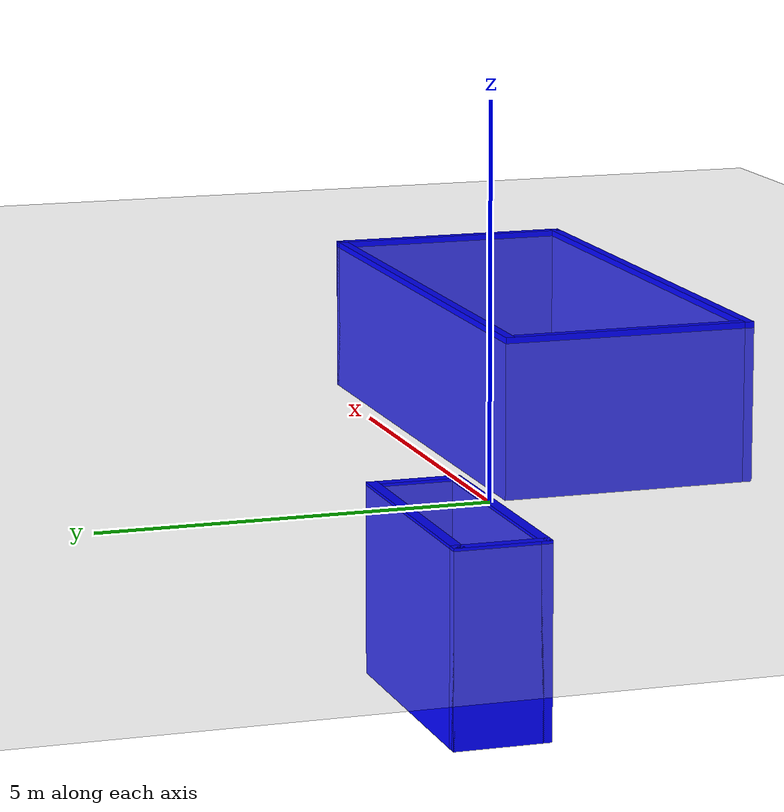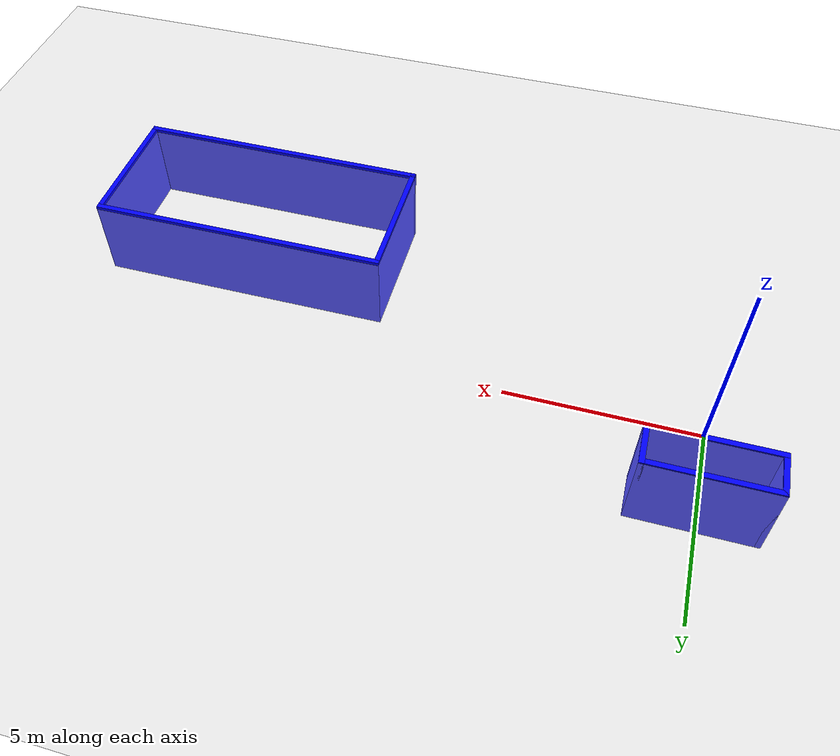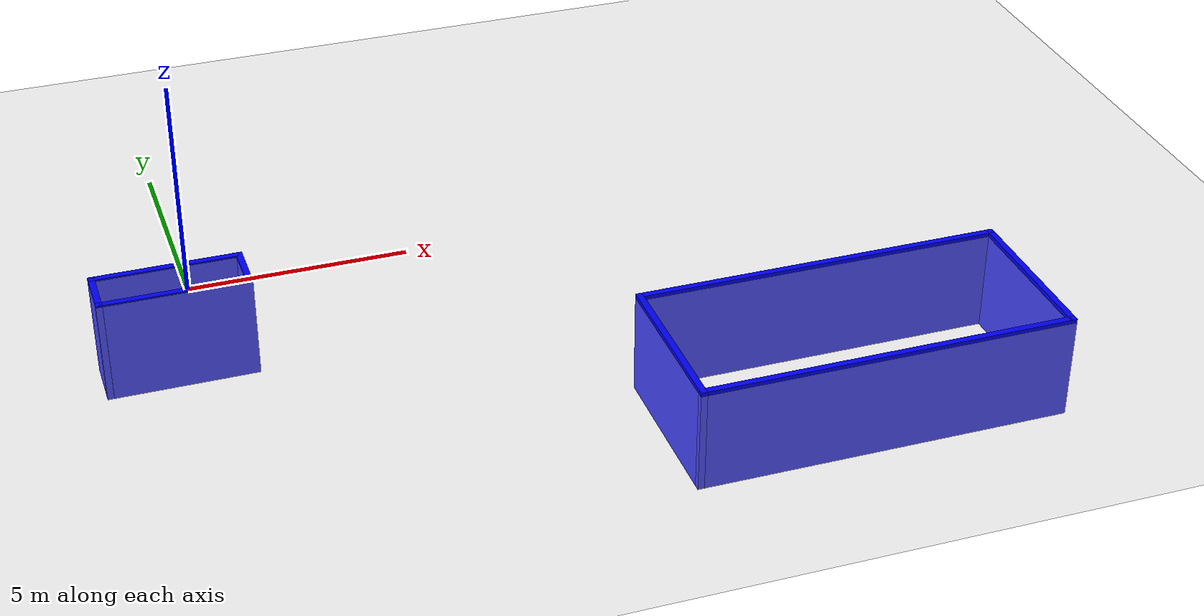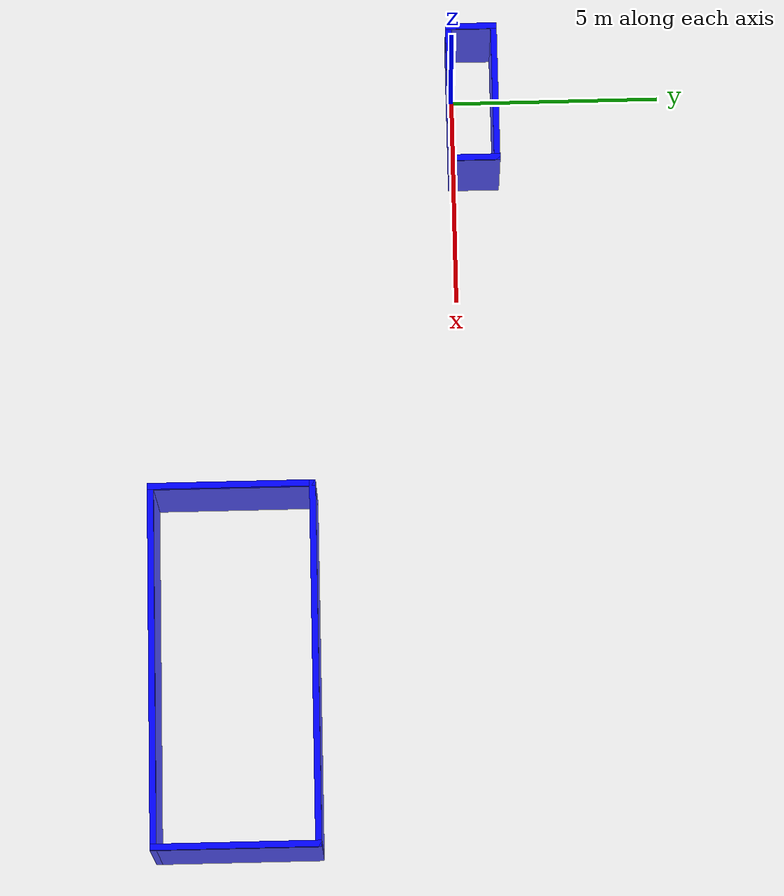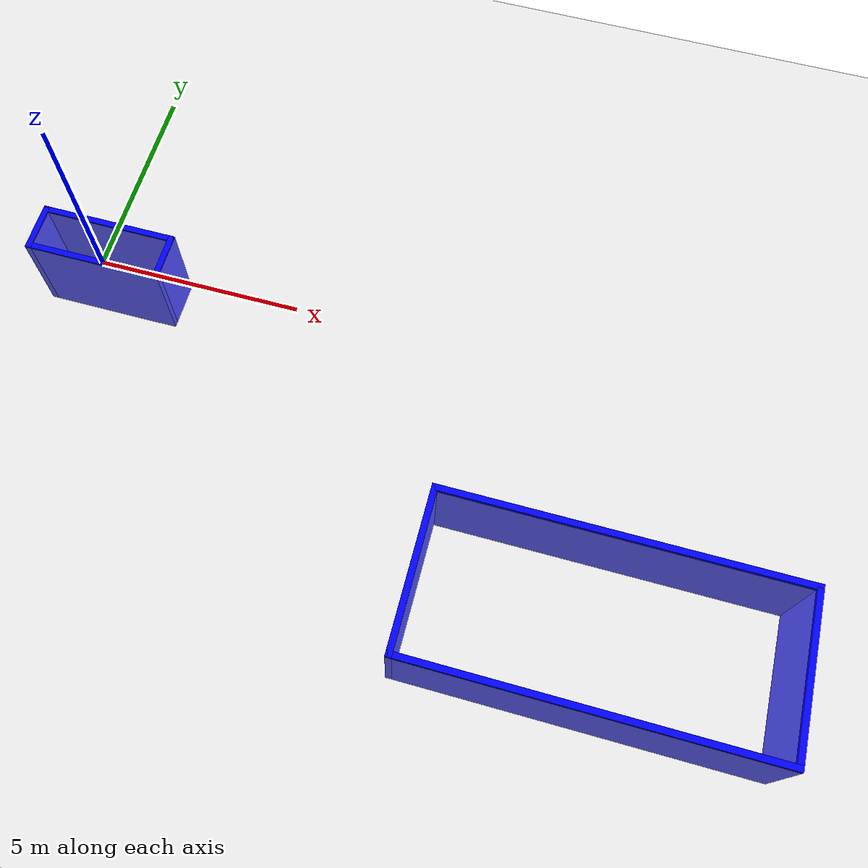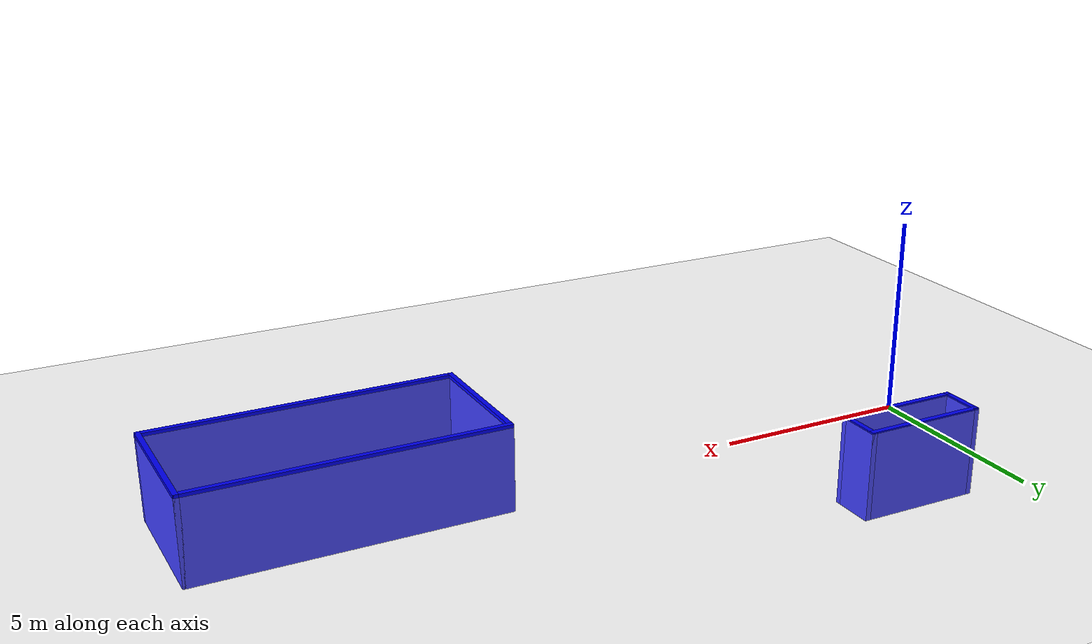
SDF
<sdf version="1.7">
 <world name="default">
  <physics type="ode">
   <ode>
    <solver>
     <type>quick</type>
     <iters>100</iters>
     <sor>1</sor>
     <use_dynamic_moi_rescaling>0</use_dynamic_moi_rescaling>
    </solver>
    <constraints>
     <cfm>0</cfm>
     <erp>0.9</erp>
     <contact_max_correcting_vel>0.1</contact_max_correcting_vel>
     <contact_surface_layer>0</contact_surface_layer>
    </constraints>
   </ode>
   <real_time_update_rate>1000</real_time_update_rate>
   <max_step_size>0.001</max_step_size>
   <real_time_factor>1</real_time_factor>
  </physics>
  <scene>
   <sky><clouds><speed>12</speed></clouds></sky>
   <ambient>0.4 0.4 0.4 1</ambient>
   <background>0.25 0.25 0.25 1</background>
   <shadows>1</shadows>
  </scene>
  <model name="ground_plane">
   <static>1</static>
   <link name="link">
    <collision name="collision">
     <geometry><plane><normal>0 0 1</normal><size>5000 5000</size></plane></geometry>
     <surface><friction><ode><mu>1</mu><mu2>1</mu2></ode></friction></surface>
    </collision>
    <visual name="runway">
     <pose>0 0 0.005 0 -0 0</pose>
     <cast_shadows>0</cast_shadows>
     <geometry><plane><normal>0 0 1</normal><size>1829 45</size></plane></geometry>
     <material>
      <script><uri>file://media/materials/scripts/gazebo.material</uri><name>Gazebo/Runway</name></script>
     </material>
    </visual>
    <visual name="grass">
     <pose>0 0 -0.1 0 -0 0</pose>
     <cast_shadows>0</cast_shadows>
     <geometry><plane><normal>0 0 1</normal><size>5000 5000</size></plane></geometry>
     <material>
      <script><uri>file://media/materials/scripts/gazebo.material</uri><name>Gazebo/Grass</name></script>
     </material>
    </visual>
   </link>
  </model>
  <light name="sun" type="directional">
   <pose>0 0 10 0 -0 0</pose>
   <diffuse>0.8 0.8 0.8 1</diffuse>
   <specular>0.2 0.2 0.2 1</specular>
   <attenuation>
    <range>1000</range>
    <constant>0.9</constant>
    <linear>0.01</linear>
    <quadratic>0.001</quadratic>
   </attenuation>
   <direction>-0.5 0.1 -0.9</direction>
   <spot><inner_angle>0</inner_angle><outer_angle>0</outer_angle><falloff>0</falloff></spot>
  </light>
  <gravity>0 0 -9.8</gravity>
  <magnetic_field>6e-06 2.3e-05 -4.2e-05</magnetic_field>
  <atmosphere type="adiabatic"/>
  <spherical_coordinates>
   <surface_model>EARTH_WGS84</surface_model>
   <latitude_deg>0</latitude_deg>
   <longitude_deg>0</longitude_deg>
   <elevation>0</elevation>
   <heading_deg>0</heading_deg>
  </spherical_coordinates>
  <model name="imavtape">
   <pose>-0.309467 1.06302 -2.48345 0 -0 0</pose>
   <link name="Wall_0">
    <collision name="Wall_0_Collision">
     <geometry><box><size>3.5 0.15 2.5</size></box></geometry>
     <pose>0 0 1.25 0 -0 0</pose>
    </collision>
    <visual name="Wall_0_Visual">
     <pose>0 0 1.25 0 -0 0</pose>
     <geometry><box><size>3.5 0.15 2.5</size></box></geometry>
     <material>
      <script><uri>file://media/materials/scripts/gazebo.material</uri><name>Gazebo/Grey</name></script>
      <ambient>0 0 1 1</ambient>
     </material>
     <meta><layer>0</layer></meta>
    </visual>
    <pose>-0 0.0225 0 0 -0 0</pose>
   </link>
   <link name="Wall_1">
    <collision name="Wall_1_Collision">
     <geometry><box><size>1.25 0.15 2.5</size></box></geometry>
     <pose>0 0 1.25 0 -0 0</pose>
    </collision>
    <visual name="Wall_1_Visual">
     <pose>0 0 1.25 0 -0 0</pose>
     <geometry><box><size>1.25 0.15 2.5</size></box></geometry>
     <material>
      <script><uri>file://media/materials/scripts/gazebo.material</uri><name>Gazebo/Grey</name></script>
      <ambient>0 0 1 1</ambient>
     </material>
     <meta><layer>0</layer></meta>
    </visual>
    <pose>1.675 -0.5275 0 0 -0 -1.5708</pose>
   </link>
   <link name="Wall_2">
    <collision name="Wall_2_Collision">
     <geometry><box><size>3.5 0.15 2.5</size></box></geometry>
     <pose>0 0 1.25 0 -0 0</pose>
    </collision>
    <visual name="Wall_2_Visual">
     <pose>0 0 1.25 0 -0 0</pose>
     <geometry><box><size>3.5 0.15 2.5</size></box></geometry>
     <material>
      <script><uri>file://media/materials/scripts/gazebo.material</uri><name>Gazebo/Grey</name></script>
      <ambient>0 0 1 1</ambient>
     </material>
     <meta><layer>0</layer></meta>
    </visual>
    <pose>-0 -1.0775 0 0 -0 3.14159</pose>
   </link>
   <link name="Wall_3">
    <collision name="Wall_3_Collision">
     <geometry><box><size>1.25 0.15 2.5</size></box></geometry>
     <pose>0 0 1.25 0 -0 0</pose>
    </collision>
    <visual name="Wall_3_Visual">
     <pose>0 0 1.25 0 -0 0</pose>
     <geometry><box><size>1.25 0.15 2.5</size></box></geometry>
     <material>
      <script><uri>file://media/materials/scripts/gazebo.material</uri><name>Gazebo/Grey</name></script>
      <ambient>0 0 1 1</ambient>
     </material>
     <meta><layer>0</layer></meta>
    </visual>
    <pose>-1.675 -0.5275 0 0 -0 1.5708</pose>
   </link>
   <static>1</static>
  </model>
  <model name="Untitled_1">
   <pose>13.6775 -3.7275 -2.42693 0 -0 0</pose>
   <link name="Wall_12">
    <collision name="Wall_12_Collision">
     <geometry><box><size>8.75 0.15 2.5</size></box></geometry>
     <pose>0 0 1.25 0 -0 0</pose>
    </collision>
    <visual name="Wall_12_Visual">
     <pose>0 0 1.25 0 -0 0</pose>
     <geometry><box><size>8.75 0.15 2.5</size></box></geometry>
     <material>
      <script><uri>file://media/materials/scripts/gazebo.material</uri><name>Gazebo/Grey</name></script>
      <ambient>0 0 1 1</ambient>
     </material>
     <meta><layer>0</layer></meta>
    </visual>
    <pose>0 0.1975 0 0 -0 0</pose>
   </link>
   <link name="Wall_13">
    <collision name="Wall_13_Collision">
     <geometry><box><size>4 0.15 2.5</size></box></geometry>
     <pose>0 0 1.25 0 -0 0</pose>
    </collision>
    <visual name="Wall_13_Visual">
     <pose>0 0 1.25 0 -0 0</pose>
     <geometry><box><size>4 0.15 2.5</size></box></geometry>
     <material>
      <script><uri>file://media/materials/scripts/gazebo.material</uri><name>Gazebo/Grey</name></script>
      <ambient>0 0 1 1</ambient>
     </material>
     <meta><layer>0</layer></meta>
    </visual>
    <pose>4.3 -1.7275 0 0 -0 -1.5708</pose>
   </link>
   <link name="Wall_14">
    <collision name="Wall_14_Collision">
     <geometry><box><size>8.75 0.15 2.5</size></box></geometry>
     <pose>0 0 1.25 0 -0 0</pose>
    </collision>
    <visual name="Wall_14_Visual">
     <pose>0 0 1.25 0 -0 0</pose>
     <geometry><box><size>8.75 0.15 2.5</size></box></geometry>
     <material>
      <script><uri>file://media/materials/scripts/gazebo.material</uri><name>Gazebo/Grey</name></script>
      <ambient>0 0 1 1</ambient>
     </material>
     <meta><layer>0</layer></meta>
    </visual>
    <pose>0 -3.6525 0 0 -0 3.14159</pose>
   </link>
   <link name="Wall_15">
    <collision name="Wall_15_Collision">
     <geometry><box><size>4 0.15 2.5</size></box></geometry>
     <pose>0 0 1.25 0 -0 0</pose>
    </collision>
    <visual name="Wall_15_Visual">
     <pose>0 0 1.25 0 -0 0</pose>
     <geometry><box><size>4 0.15 2.5</size></box></geometry>
     <material>
      <script><uri>file://media/materials/scripts/gazebo.material</uri><name>Gazebo/Grey</name></script>
      <ambient>0 0 1 1</ambient>
     </material>
     <meta><layer>0</layer></meta>
    </visual>
    <pose>-4.3 -1.7275 0 0 -0 1.5708</pose>
   </link>
   <static>1</static>
  </model>
 </world>
</sdf>
